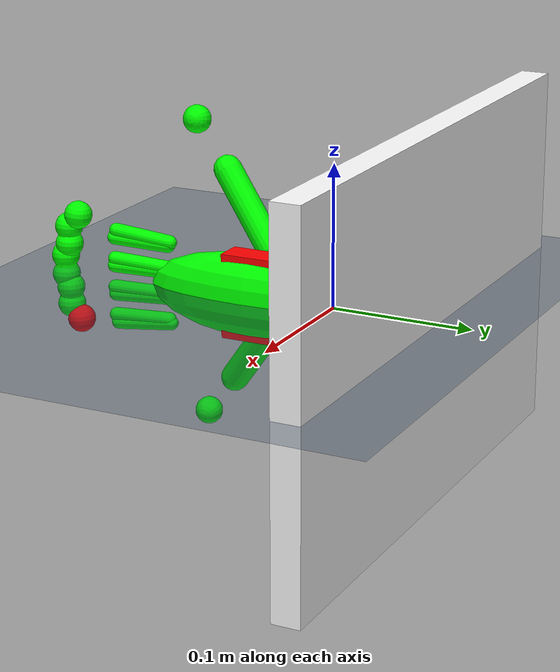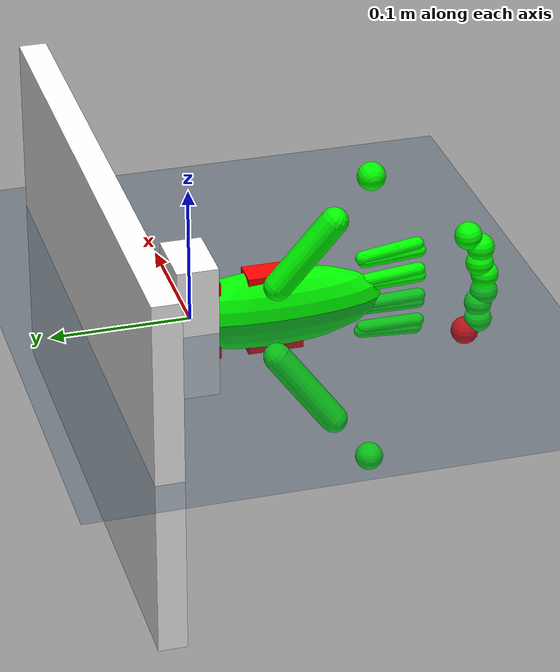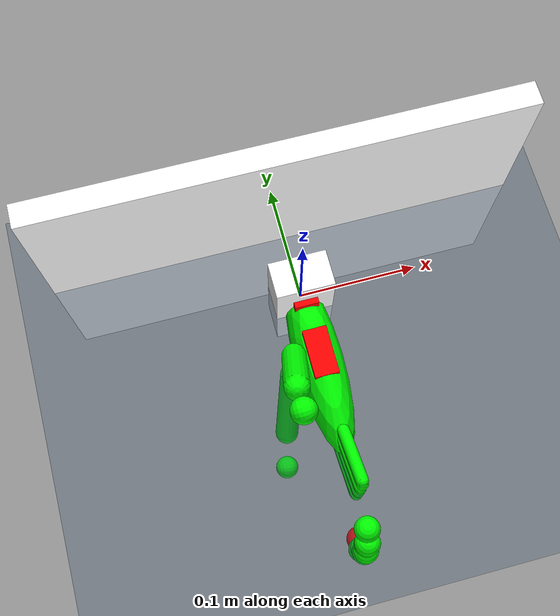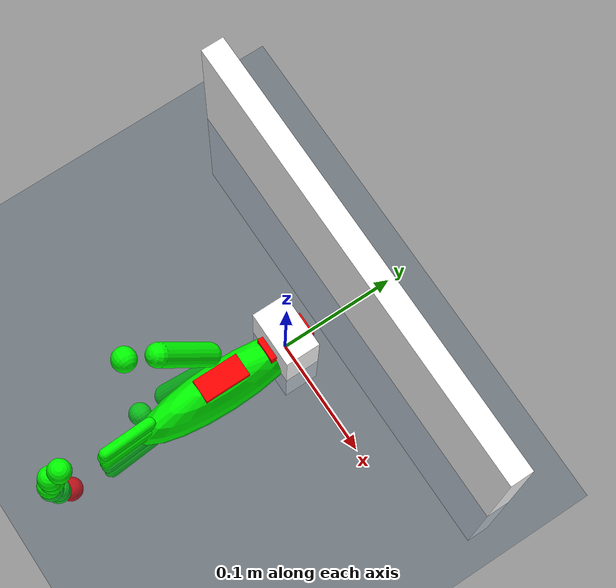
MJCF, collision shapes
<mujoco>
    <include file="inspire_hand_right.xml" />
    <include file="inspire_hand_left.xml" />

    <visual>
        <headlight diffuse="0.6 0.6 0.6" ambient="0.1 0.1 0.1" specular="0.9 0.9 0.9" />
        <rgba haze="0.15 0.25 0.35 1" />
        <global azimuth="140" elevation="-20" />
    </visual>

    <asset>
        <texture type="skybox" builtin="gradient" rgb1="0.3 0.5 0.7" rgb2="0 0 0" width="512"
            height="3072" />
        <texture type="2d" name="groundplane" builtin="checker" mark="edge" rgb1="0.2 0.3 0.4"
            rgb2="0.1 0.2 0.3"
            markrgb="0.8 0.8 0.8" width="300" height="300" />
        <material name="groundplane" texture="groundplane" texuniform="true" texrepeat="5 5"
            reflectance="0.2" />
    </asset>

    <worldbody>
        <!-- The floor is slightly elevated to accommodate the reference mocap data for the
        humanoid_mocap task -->
        <light pos="0 0 3.5" dir="0 0 -1" directional="false" />
        <geom name="floor" size="0 0 0.05" pos="0 0 0.0" type="plane" material="groundplane"
        />
        <body name="object_right" pos="0 0 0.0">
            <freejoint />
            <site name="object_right" pos="0 0 0" type="box" size="0.01 0.02 0.03"
                rgba="1 0 0 1" />
            <geom name="object_right" type="box" density="100" size="0.024 0.015 0.05"
                rgba="1.0 1.0 1.0 1" pos="0 0 0" />
            <camera name="track" pos="0 -.6 .3" xyaxes="1 0 0 0 1 2" mode="track" />
        </body>
        <body name="object_left" pos="0.0 0.0 0.0">
            <freejoint />
            <site name="object_left" pos="0 0 0" type="box" size="0.01 0.02 0.03"
                rgba="0 1 0 1" />
            <geom name="object_left" type="box" density="100" size="0.2 0.01 0.13"
                rgba="1.0 1.0 1.0 1" pos="0 0.065 0" />
        </body>
    </worldbody>

    <!-- manually specify the contact pairs -->
    <contact>
        <pair name="right_thumb_collision_box" geom1="right_thumb_collision" geom2="object_right"
            solref="0.008 1"
            friction="1 1 0.1" condim="3" />
        <pair name="right_thumb_intermediate_collision_box"
            geom1="right_thumb_intermediate_collision"
            geom2="object_right" solref="0.008 1"
            friction="1 1" condim="3" />
        <pair name="right_index_collision_box" geom1="right_index_collision" geom2="object_right"
            solref="0.008 1"
            friction="1 1 0.1" condim="3" />
        <pair name="right_middle_collision_box" geom1="right_middle_collision" geom2="object_right"
            solref="0.008 1"
            friction="1 1" condim="3" />
        <pair name="right_ring_collision_box" geom1="right_ring_collision" geom2="object_right"
            solref="0.008 1"
            friction="1 1" condim="3" />
        <pair name="right_pinky_collision_box" geom1="right_pinky_collision" geom2="object_right"
            solref="0.008 1"
            friction="1 1" condim="3" />

        <pair name="left_thumb_collision_box" geom1="left_thumb_collision" geom2="object_left"
            solref="0.008 1"
            friction="1 1" condim="3" />
        <pair name="left_thumb_intermediate_collision_box" geom1="left_thumb_intermediate_collision"
            geom2="object_left" solref="0.008 1"
            friction="1 1" condim="3" />
        <pair name="left_index_collision_box" geom1="left_index_collision" geom2="object_left"
            solref="0.008 1"
            friction="1 1" condim="3" />
        <pair name="left_middle_collision_box" geom1="left_middle_collision" geom2="object_left"
            solref="0.008 1"
            friction="1 1" condim="3" />
        <pair name="left_ring_collision_box" geom1="left_ring_collision" geom2="object_left"
            solref="0.008 1"
            friction="1 1" condim="3" />
        <pair name="left_pinky_collision_box" geom1="left_pinky_collision" geom2="object_left"
            solref="0.008 1"
            friction="1 1" condim="3" />

        <!-- object ground contact -->
        <pair name="object_ground_contact_right" geom1="object_right" geom2="floor" solref="0.008 1"
            friction="1 1" condim="3" />
        <pair name="object_ground_contact_left" geom1="object_left" geom2="floor" solref="0.008 1"
            friction="1 1" condim="3" />

        <!-- object object contact -->
        <pair name="object_object_contact_right" geom1="object_right" geom2="object_left"
            solref="0.008 1"
            friction="0.01 0.01" condim="1" />

        <!-- extra: right hand, left object contact -->
        <pair name="right_hand_left_object_thumb_tip" geom1="right_thumb_collision"
            geom2="object_left"
            solref="0.008 1"
            friction="0.01 0.01" condim="1" />
        <pair name="right_hand_left_object_index_tip" geom1="right_index_collision"
            geom2="object_left"
            solref="0.008 1"
            friction="0.01 0.01" condim="1" />
    </contact>

</mujoco>

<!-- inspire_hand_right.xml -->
<mujoco model="h1">
  <compiler angle="radian" meshdir="./meshes/" autolimits="true" />

  <option timestep="0.02"
    iterations="10" ls_iterations="50">
    <flag eulerdamp="disable" />
  </option>

  <default>
    <!-- disable all contacts and use explicit collision pairs -->
    <geom condim="1" contype="0" conaffinity="0" />
    <!-- with this setting, the response time is around 1s -->
    <position kp="300" dampratio="1.0" inheritrange="1" />
    <joint damping="0.0" armature="1.0" frictionloss="0.0" />
    <default class="mimic_right">
      <site size="0.01" type="sphere" rgba="1 0 0 1" group="0" />
    </default>
  </default>

  <asset>
    <mesh name="R_hand_base_link" content_type="model/stl" file="R_hand_base_link.STL" />
    <mesh name="Link11_R" content_type="model/stl" file="Link11_R.STL" />
    <mesh name="Link12_R" content_type="model/stl" file="Link12_R.STL" />
    <mesh name="Link13_R" content_type="model/stl" file="Link13_R.STL" />
    <mesh name="Link14_R" content_type="model/stl" file="Link14_R.STL" />
    <mesh name="Link15_R" content_type="model/stl" file="Link15_R.STL" />
    <mesh name="Link16_R" content_type="model/stl" file="Link16_R.STL" />
    <mesh name="Link17_R" content_type="model/stl" file="Link17_R.STL" />
    <mesh name="Link18_R" content_type="model/stl" file="Link18_R.STL" />
    <mesh name="Link19_R" content_type="model/stl" file="Link19_R.STL" />
    <mesh name="Link20_R" content_type="model/stl" file="Link20_R.STL" />
    <mesh name="Link21_R" content_type="model/stl" file="Link21_R.STL" />
    <mesh name="Link22_R" content_type="model/stl" file="Link22_R.STL" />
  </asset>

  <worldbody>
    <body name="right_hand_base" pos="0 0 0">
      <site name="right_palm" pos="0 -0.06 0" class="mimic_right" type="box" size="0.01 0.02 0.03" />
      <joint name="right_pos_x" type="slide" pos="0 0 0" axis="1 0 0" range="-1.0 1.0" />
      <joint name="right_pos_y" type="slide" pos="0 0 0" axis="0 1 0" range="-1.0 1.0" />
      <joint name="right_pos_z" type="slide" pos="0 0 0" axis="0 0 1" range="-1.0 1.0" />
      <!-- create rotation x, y, z joints -->
      <joint name="right_rot_x" type="hinge" pos="0 0 0" axis="1 0 0" range="-6.28 6.28" />
      <joint name="right_rot_y" type="hinge" pos="0 0 0" axis="0 1 0" range="-6.28 6.28" />
      <joint name="right_rot_z" type="hinge" pos="0 0 0" axis="0 0 1" range="-6.28 6.28" />
      <!-- add palm collision, use ellipsoid since mujoco mjx doesn't support box-cylinder
      collision -->
      <geom type="ellipsoid" name="right_palm_collision" size="0.02 0.08 0.03" pos="0 -0.06 0"
        contype="0" conaffinity="0" group="3" density="0" rgba="0 1 0 1" />
      <geom type="mesh" contype="0" conaffinity="0" group="1" density="0" rgba="0.1 0.1 0.1 1"
        mesh="R_hand_base_link" />
      <geom type="mesh" rgba="0.1 0.1 0.1 1" mesh="R_hand_base_link" />
      <body name="right_thumb_proximal_base" pos="-0.01696 -0.0691 -0.02045"
        quat="0.499998 0.5 -0.5 0.500002">
        <inertial pos="-0.0048064 0.0009382 -0.00757" quat="0.515015 0.680854 0.408023 0.323596"
          mass="0.0018869" diaginertia="8.66026e-08 6.8732e-08 4.94194e-08" />
        <joint name="right_thumb_proximal_yaw_joint" pos="0 0 0" axis="0 0 -1" range="-0.1 1.3"
          actuatorfrcrange="-1 1" />
        <geom type="mesh" contype="0" conaffinity="0" group="1" density="0" rgba="0.1 0.1 0.1 1"
          mesh="Link11_R" />
        <geom type="mesh" rgba="0.1 0.1 0.1 1" mesh="Link11_R" />
        <body name="right_thumb_proximal" pos="-0.0088099 0.010892 -0.00925"
          quat="0.0996843 0.0996847 0.700046 0.700044">
          <inertial pos="0.021932 0.012785 -0.0080386" quat="-0.254474 0.660716 0.251893 0.659733"
            mass="0.0066075" diaginertia="2.78601e-06 2.43933e-06 8.64566e-07" />
          <joint name="right_thumb_proximal_pitch_joint" pos="0 0 0" axis="0 0 1" range="0 0.5"
            actuatorfrcrange="-1 1" />
          <geom type="mesh" contype="0" conaffinity="0" group="1" density="0" rgba="0.1 0.1 0.1 1"
            mesh="Link12_R" />
          <geom type="mesh" rgba="0.1 0.1 0.1 1" mesh="Link12_R" />
          <geom name="right_thumb_intermediate_collision" type="capsule"
            fromto="-0.003140 -0.002501 -0.005 0.047924 0.035228 -0.005"
            size="0.01" contype="0" conaffinity="0" group="3" density="0"
            rgba="0 1 0 1" />
          <body name="right_thumb_intermediate" pos="0.04407 0.034553 -0.0008">
            <inertial pos="0.0095544 -0.0016282 -0.0071997"
              quat="0.636718 0.307389 -0.636802 0.307548" mass="0.0037847"
              diaginertia="4.6531e-07 4.48089e-07 2.45661e-07" />
            <joint name="right_thumb_intermediate_joint" pos="0 0 0" axis="0 0 1" range="0 0.8"
              actuatorfrcrange="-1 1" />
            <geom type="mesh" contype="0" conaffinity="0" group="1" density="0" rgba="0.1 0.1 0.1 1"
              mesh="Link13_R" />
            <geom type="mesh" rgba="0.1 0.1 0.1 1" mesh="Link13_R" />
            <body name="right_thumb_distal" pos="0.020248 0.010156 -0.0012">
              <inertial pos="0.0092888 0.0049529 -0.0060033"
                quat="-0.266294 0.655967 0.262806 0.655537" mass="0.0033441"
                diaginertia="2.0026e-07 1.95247e-07 8.1593e-08" />
              <joint name="right_thumb_distal_joint" pos="0 0 0" axis="0 0 1" range="0 1.2"
                actuatorfrcrange="-1 1" />
              <geom type="mesh" contype="0" conaffinity="0" group="1" density="0"
                rgba="0.1 0.1 0.1 1"
                mesh="Link14_R" />
              <geom type="mesh" rgba="0.1 0.1 0.1 1" mesh="Link14_R" />
              <geom name="right_thumb_collision" size="0.01" pos="0.0159104 0.0156076 -0.00599021"
                contype="0" conaffinity="0"
                group="3" density="0" rgba="0 1 0 1" />
              <site name="right_thumb_tip" pos="0.0159104 0.0156076 -0.00599021" class="mimic_right" />
            </body>
          </body>
        </body>
      </body>
      <body name="right_index_proximal" pos="0.00028533 -0.13653 -0.032268"
        quat="0.0174454 -0.999848 0 0">
        <inertial pos="0.0012259 0.011942 -0.0060001" quat="0.50867 0.49121 -0.508643 0.491172"
          mass="0.0042403" diaginertia="6.9398e-07 6.62871e-07 2.10909e-07" />
        <joint name="right_index_proximal_joint" pos="0 0 0" axis="0 0 1" range="0 1.7"
          actuatorfrcrange="-1 1" />
        <geom type="mesh" contype="0" conaffinity="0" group="1" density="0" rgba="0.1 0.1 0.1 1"
          mesh="Link15_R" />
        <geom type="mesh" rgba="0.1 0.1 0.1 1" mesh="Link15_R" />
        <geom name="right_index_intermediate_collision" type="capsule"
          fromto="-0.000437 -0.009413 -0.005 0.002139 0.032175 -0.005"
          size="0.005" contype="0" conaffinity="0" group="3" density="0"
          rgba="0 1 0 1" />
        <body name="right_index_intermediate" pos="-0.0026138 0.032026 -0.001">
          <inertial pos="0.0019697 0.019589 -0.005" quat="0.466773 0.531152 -0.466773 0.531153"
            mass="0.0045683" diaginertia="7.8179e-07 7.72465e-07 8.47212e-08" />
          <joint name="right_index_intermediate_joint" pos="0 0 0" axis="0 0 1" range="0 1.7"
            actuatorfrcrange="-1 1" />
          <geom type="mesh" contype="0" conaffinity="0" group="1" density="0" rgba="0.1 0.1 0.1 1"
            mesh="Link16_R" />
          <geom type="mesh" rgba="0.1 0.1 0.1 1" mesh="Link16_R" />
          <geom name="right_index_collision" size="0.01" pos="-0.00412053 0.0433132 -0.00501047"
            contype="0" conaffinity="0"
            group="3" density="0" rgba="0 1 0 1" />
          <site name="right_index_tip" pos="-0.00412053 0.0433132 -0.00501047" class="mimic_right" />
        </body>
      </body>
      <body name="right_middle_proximal" pos="0.00028533 -0.1371 -0.01295"
        quat="-3.67321e-06 -1 0 0">
        <inertial pos="0.001297 0.011934 -0.0060001" quat="0.510131 0.489693 -0.510105 0.489653"
          mass="0.0042403" diaginertia="6.9397e-07 6.62865e-07 2.10915e-07" />
        <joint name="right_middle_proximal_joint" pos="0 0 0" axis="0 0 1" range="0 1.7"
          actuatorfrcrange="-1 1" />
        <geom type="mesh" contype="0" conaffinity="0" group="1" density="0" rgba="0.1 0.1 0.1 1"
          mesh="Link17_R" />
        <geom type="mesh" rgba="0.1 0.1 0.1 1" mesh="Link17_R" />
        <geom name="right_middle_intermediate_collision" type="capsule"
          fromto="-0.000437 -0.009413 -0.005 0.002139 0.032175 -0.005"
          size="0.005" contype="0" conaffinity="0" group="3" density="0"
          rgba="0 1 0 1" />
        <body name="right_middle_intermediate" pos="-0.0024229 0.032041 -0.001">
          <inertial pos="0.001921 0.020796 -0.005" quat="0.466148 0.531627 -0.466229 0.531705"
            mass="0.0050396" diaginertia="9.8384e-07 9.73279e-07 9.14014e-08" />
          <joint name="right_middle_intermediate_joint" pos="0 0 0" axis="0 0 1" range="0 1.7"
            actuatorfrcrange="-1 1" />
          <geom type="mesh" contype="0" conaffinity="0" group="1" density="0" rgba="0.1 0.1 0.1 1"
            mesh="Link18_R" />
          <geom type="mesh" rgba="0.1 0.1 0.1 1" mesh="Link18_R" />
          <geom name="right_middle_collision" size="0.01" pos="-0.00426879 0.0466043 -0.00498678"
            contype="0" conaffinity="0"
            group="3" density="0" rgba="0 1 0 1" />
          <site name="right_middle_tip" pos="-0.00426879 0.0466043 -0.00498678" class="mimic_right" />
        </body>
      </body>
      <body name="right_ring_proximal" pos="0.00028533 -0.13691 0.0062872"
        quat="0.0261933 0.999657 0 0">
        <inertial pos="0.001297 0.011934 -0.0060002" quat="0.510129 0.489691 -0.510107 0.489654"
          mass="0.0042403" diaginertia="6.9397e-07 6.62865e-07 2.10915e-07" />
        <joint name="right_ring_proximal_joint" pos="0 0 0" axis="0 0 1" range="0 1.7"
          actuatorfrcrange="-1 1" />
        <geom type="mesh" contype="0" conaffinity="0" group="1" density="0" rgba="0.1 0.1 0.1 1"
          mesh="Link19_R" />
        <geom type="mesh" rgba="0.1 0.1 0.1 1" mesh="Link19_R" />
        <geom name="right_ring_intermediate_collision" type="capsule"
          fromto="-0.000437 -0.009413 -0.005 0.002139 0.032175 -0.005"
          size="0.005" contype="0" conaffinity="0" group="3" density="0"
          rgba="0 1 0 1" />
        <body name="right_ring_intermediate" pos="-0.0024229 0.032041 -0.001">
          <inertial pos="0.0021753 0.019567 -0.005" quat="0.469554 0.528695 -0.469554 0.528695"
            mass="0.0045683" diaginertia="7.8177e-07 7.72448e-07 8.4722e-08" />
          <joint name="right_ring_intermediate_joint" pos="0 0 0" axis="0 0 1" range="0 1.7"
            actuatorfrcrange="-1 1" />
          <geom type="mesh" contype="0" conaffinity="0" group="1" density="0" rgba="0.1 0.1 0.1 1"
            mesh="Link20_R" />
          <geom type="mesh" rgba="0.1 0.1 0.1 1" mesh="Link20_R" />
          <geom name="right_ring_collision" size="0.01" pos="-0.00366554 0.0433541 -0.00501047"
            contype="0" conaffinity="0"
            group="3" density="0" rgba="0 1 0 1" />
          <site name="right_ring_tip" pos="-0.00366554 0.0433541 -0.00501047" class="mimic_right" />
        </body>
      </body>
      <body name="right_pinky_proximal" pos="0.00028533 -0.13571 0.025488"
        quat="0.0523224 0.99863 0 0">
        <inertial pos="0.001297 0.011934 -0.0060001" quat="0.51013 0.489693 -0.510106 0.489653"
          mass="0.0042403" diaginertia="6.9397e-07 6.62865e-07 2.10915e-07" />
        <joint name="right_pinky_proximal_joint" pos="0 0 0" axis="0 0 1" range="0 1.7"
          actuatorfrcrange="-1 1" />
        <geom type="mesh" contype="0" conaffinity="0" group="1" density="0" rgba="0.1 0.1 0.1 1"
          mesh="Link21_R" />
        <geom type="mesh" rgba="0.1 0.1 0.1 1" mesh="Link21_R" />
        <geom name="right_pinky_intermediate_collision" type="capsule"
          fromto="-0.000437 -0.009413 -0.005 0.002139 0.032175 -0.005"
          size="0.005" contype="0" conaffinity="0" group="3" density="0"
          rgba="0 1 0 1" />
        <body name="right_pinky_intermediate" pos="-0.0024229 0.032041 -0.001">
          <inertial pos="0.0024748 0.016203 -0.0050031" quat="0.47398 0.528862 -0.469291 0.524799"
            mass="0.0035996" diaginertia="4.4867e-07 4.43723e-07 6.56538e-08" />
          <joint name="right_pinky_intermediate_joint" pos="0 0 0" axis="0 0 1" range="0 1.7"
            actuatorfrcrange="-1 1" />
          <geom type="mesh" contype="0" conaffinity="0" group="1" density="0" rgba="0.1 0.1 0.1 1"
            mesh="Link22_R" />
          <geom type="mesh" rgba="0.1 0.1 0.1 1" mesh="Link22_R" />
          <geom name="right_pinky_collision" size="0.01" pos="-0.00260734 0.0362776 -0.00501047"
            contype="0" conaffinity="0"
            group="3" density="0" rgba="0 1 0 1" />
          <site name="right_pinky_tip" pos="-0.00260734 0.0362776 -0.00501047" class="mimic_right" />
        </body>
      </body>
    </body>
  </worldbody>

  <actuator>
    <!-- Global position and rotation joints -->
    <position name="right_pos_x_position" joint="right_pos_x" />
    <position name="right_pos_y_position" joint="right_pos_y" />
    <position name="right_pos_z_position" joint="right_pos_z" />
    <position name="right_rot_x_position" joint="right_rot_x" />
    <position name="right_rot_y_position" joint="right_rot_y" />
    <position name="right_rot_z_position" joint="right_rot_z" />

    <!-- Thumb joints -->
    <position name="right_thumb_proximal_yaw_position" joint="right_thumb_proximal_yaw_joint" />
    <position name="right_thumb_proximal_pitch_position" joint="right_thumb_proximal_pitch_joint" />
    <position name="right_thumb_intermediate_position" joint="right_thumb_intermediate_joint" />
    <position name="right_thumb_distal_position" joint="right_thumb_distal_joint" />

    <!-- Index joints -->
    <position name="right_index_proximal_position" joint="right_index_proximal_joint" />
    <position name="right_index_intermediate_position" joint="right_index_intermediate_joint" />

    <!-- Middle joints -->
    <position name="right_middle_proximal_position" joint="right_middle_proximal_joint" />
    <position name="right_middle_intermediate_position" joint="right_middle_intermediate_joint" />

    <!-- Ring joints -->
    <position name="right_ring_proximal_position" joint="right_ring_proximal_joint" />
    <position name="right_ring_intermediate_position" joint="right_ring_intermediate_joint" />

    <!-- Pinky joints -->
    <position name="right_pinky_proximal_position" joint="right_pinky_proximal_joint" />
    <position name="right_pinky_intermediate_position" joint="right_pinky_intermediate_joint" />

  </actuator>
</mujoco>

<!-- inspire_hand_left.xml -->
<mujoco model="h1">
    <compiler angle="radian" meshdir="./meshes/" />

    <option timestep="0.02" iterations="10" ls_iterations="50">
        <flag eulerdamp="disable" />
    </option>

    <default>
        <!-- disable all contacts and use explicit collision pairs -->
        <geom condim="1" contype="0" conaffinity="0" />
        <!-- with this setting, the response time is around 1s -->
        <position kp="300" dampratio="1.0" inheritrange="1" />
        <joint damping="0.0" armature="1.0" frictionloss="0.0" />
        <default class="mimic_left">
            <site size="0.01" type="sphere" rgba="1 0 0 1" group="0" />
        </default>
    </default>

    <asset>
        <mesh name="L_hand_base_link" content_type="model/stl" file="L_hand_base_link.STL" />
        <mesh name="Link11_L" content_type="model/stl" file="Link11_L.STL" />
        <mesh name="Link12_L" content_type="model/stl" file="Link12_L.STL" />
        <mesh name="Link13_L" content_type="model/stl" file="Link13_L.STL" />
        <mesh name="Link14_L" content_type="model/stl" file="Link14_L.STL" />
        <mesh name="Link15_L" content_type="model/stl" file="Link15_L.STL" />
        <mesh name="Link16_L" content_type="model/stl" file="Link16_L.STL" />
        <mesh name="Link17_L" content_type="model/stl" file="Link17_L.STL" />
        <mesh name="Link18_L" content_type="model/stl" file="Link18_L.STL" />
        <mesh name="Link19_L" content_type="model/stl" file="Link19_L.STL" />
        <mesh name="Link20_L" content_type="model/stl" file="Link20_L.STL" />
        <mesh name="Link21_L" content_type="model/stl" file="Link21_L.STL" />
        <mesh name="Link22_L" content_type="model/stl" file="Link22_L.STL" />
    </asset>

    <worldbody>
        <body name="left_hand_base" pos="0 0 0.0">
            <site name="left_palm" pos="0 -0.06 0" class="mimic_left" type="box"
                size="0.01 0.02 0.03" />
            <joint name="left_pos_x" type="slide" pos="0 0 0" axis="1 0 0" range="-1.0 1.0" />
            <joint name="left_pos_y" type="slide" pos="0 0 0" axis="0 1 0" range="-1.0 1.0" />
            <joint name="left_pos_z" type="slide" pos="0 0 0" axis="0 0 1" range="-1.0 1.0" />
            <!-- create rotation x, y, z joints -->
            <joint name="left_rot_x" type="hinge" pos="0 0 0" axis="1 0 0" range="-6.28 6.28" />
            <joint name="left_rot_y" type="hinge" pos="0 0 0" axis="0 1 0" range="-6.28 6.28" />
            <joint name="left_rot_z" type="hinge" pos="0 0 0" axis="0 0 1" range="-6.28 6.28" />
            <!-- add palm collision, use ellipsoid since mujoco mjx doesn't support box-cylinder
            collision -->
            <geom type="ellipsoid" name="left_palm_collision" size="0.02 0.08 0.03" pos="0 -0.06 0"
                contype="0" conaffinity="0" group="3" density="0" rgba="0 1 0 1" />
            <geom type="mesh" contype="0" conaffinity="0" group="1" density="0" rgba="0.1 0.1 0.1 1"
                mesh="L_hand_base_link" />
            <geom type="mesh" rgba="0.1 0.1 0.1 1" mesh="L_hand_base_link" />
            <body name="left_thumb_proximal_base" pos="-0.01696 -0.0691 0.02045"
                quat="0.499998 0.5 -0.5 0.500002">
                <inertial pos="0.0048817 0.00038782 -0.00722"
                    quat="0.445981 0.352284 0.495833 0.656617"
                    mass="0.0018869" diaginertia="8.66031e-08 6.87331e-08 4.94199e-08" />
                <joint name="left_thumb_proximal_yaw_joint" pos="0 0 0" axis="0 0 1"
                    range="-0.1 1.3" />
                <geom type="mesh" contype="0" conaffinity="0" group="1" density="0"
                    rgba="0.1 0.1 0.1 1"
                    mesh="Link11_L" />
                <geom type="mesh" rgba="0.1 0.1 0.1 1" mesh="Link11_L" />
                <body name="left_thumb_proximal" pos="0.0099867 0.0098242 -0.0089"
                    quat="0.704571 -0.704573 -0.0598169 0.0598167">
                    <inertial pos="0.021936 -0.01279 -0.0080386"
                        quat="0.25452 0.660687 -0.251949 0.659723"
                        mass="0.0066101" diaginertia="2.78701e-06 2.44024e-06 8.6466e-07" />
                    <joint name="left_thumb_proximal_pitch_joint" pos="0 0 0" axis="0 0 -1"
                        range="0 0.5" />
                    <geom type="mesh" contype="0" conaffinity="0" group="1" density="0"
                        rgba="0.1 0.1 0.1 1"
                        mesh="Link12_L" />
                    <geom type="mesh" rgba="0.1 0.1 0.1 1" mesh="Link12_L" />
                    <geom name="left_thumb_intermediate_collision" type="capsule"
                        fromto="-0.003140 0.002501 -0.005 0.047924 -0.035228 -0.005"
                        size="0.01" contype="0" conaffinity="0" group="3" density="0"
                        rgba="0 1 0 1" />
                    <body name="left_thumb_intermediate" pos="0.04407 -0.034553 -0.0008">
                        <inertial pos="0.0095531 0.0016282 -0.0072002"
                            quat="0.30738 0.636732 -0.307526 0.636803" mass="0.0037844"
                            diaginertia="4.6532e-07 4.48114e-07 2.45646e-07" />
                        <joint name="left_thumb_intermediate_joint" pos="0 0 0" axis="0 0 -1"
                            range="0 0.8" />
                        <geom type="mesh" contype="0" conaffinity="0" group="1" density="0"
                            rgba="0.1 0.1 0.1 1"
                            mesh="Link13_L" />
                        <geom type="mesh" rgba="0.1 0.1 0.1 1" mesh="Link13_L" />
                        <body name="left_thumb_distal" pos="0.020248 -0.010156 -0.0012">
                            <inertial pos="0.0092888 -0.004953 -0.0060033"
                                quat="0.266264 0.65596 -0.262836 0.655544" mass="0.003344"
                                diaginertia="2.0026e-07 1.95246e-07 8.1594e-08" />
                            <joint name="left_thumb_distal_joint" pos="0 0 0" axis="0 0 -1"
                                range="0 1.2" />
                            <geom type="mesh" contype="0" conaffinity="0" group="1" density="0"
                                rgba="0.1 0.1 0.1 1"
                                mesh="Link14_L" />
                            <geom type="mesh" rgba="0.1 0.1 0.1 1" mesh="Link14_L" />
                            <geom name="left_thumb_collision" size="0.01"
                                pos="0.0159104 -0.0156076 -0.00599021"
                                contype="0" conaffinity="0"
                                group="3" density="0" rgba="0 1 0 1" />
                            <site name="left_thumb_tip" pos="0.0159104 -0.0156076 -0.00599021"
                                class="mimic_left" />
                        </body>
                    </body>
                </body>
            </body>
            <body name="left_index_proximal" pos="0.00028533 -0.13653 0.032268"
                quat="0.999848 -0.0174526 0 0">
                <inertial pos="0.0012971 -0.011934 -0.0059998"
                    quat="0.489677 0.510115 -0.489692 0.510099"
                    mass="0.0042405" diaginertia="6.9402e-07 6.62904e-07 2.10916e-07" />
                <joint name="left_index_proximal_joint" pos="0 0 0" axis="0 0 -1" range="0 1.7" />
                <geom type="mesh" contype="0" conaffinity="0" group="1" density="0"
                    rgba="0.1 0.1 0.1 1"
                    mesh="Link15_L" />
                <geom type="mesh" rgba="0.1 0.1 0.1 1" mesh="Link15_L" />
                <geom name="left_index_intermediate_collision" type="capsule"
                    fromto="-0.000437 0.009413 -0.005 0.002139 -0.032175 -0.005"
                    size="0.005" contype="0" conaffinity="0" group="3" density="0"
                    rgba="0 1 0 1" />
                <body name="left_index_intermediate" pos="-0.0024229 -0.032041 -0.001">
                    <inertial pos="0.0021753 -0.019567 -0.005"
                        quat="0.528694 0.469555 -0.528694 0.469555"
                        mass="0.0045682" diaginertia="7.8176e-07 7.72427e-07 8.47209e-08" />
                    <joint name="left_index_intermediate_joint" pos="0 0 0" axis="0 0 -1"
                        range="0 1.7" />
                    <geom type="mesh" contype="0" conaffinity="0" group="1" density="0"
                        rgba="0.1 0.1 0.1 1"
                        mesh="Link16_L" />
                    <geom type="mesh" rgba="0.1 0.1 0.1 1" mesh="Link16_L" />
                    <geom name="left_index_collision" size="0.01"
                        pos="-0.00412053 -0.0433132 -0.00501047"
                        contype="0" conaffinity="0"
                        group="3" density="0" rgba="0 1 0 1" />
                    <site name="left_index_tip" pos="-0.00412053 -0.0433132 -0.00501047"
                        class="mimic_left" />
                </body>
            </body>
            <body name="left_middle_proximal" pos="0.00028533 -0.1371 0.01295">
                <inertial pos="0.0012971 -0.011934 -0.0059999"
                    quat="0.489677 0.510115 -0.489692 0.510099"
                    mass="0.0042405" diaginertia="6.9402e-07 6.62904e-07 2.10916e-07" />
                <joint name="left_middle_proximal_joint" pos="0 0 0" axis="0 0 -1" range="0 1.7" />
                <geom type="mesh" contype="0" conaffinity="0" group="1" density="0"
                    rgba="0.1 0.1 0.1 1"
                    mesh="Link17_L" />
                <geom type="mesh" rgba="0.1 0.1 0.1 1" mesh="Link17_L" />
                <geom name="left_middle_intermediate_collision" type="capsule"
                    fromto="-0.000437 0.009413 -0.005 0.002139 -0.032175 -0.005"
                    size="0.005" contype="0" conaffinity="0" group="3" density="0"
                    rgba="0 1 0 1" />
                <body name="left_middle_intermediate" pos="-0.0024229 -0.032041 -0.001">
                    <inertial pos="0.001921 -0.020796 -0.0049999"
                        quat="0.531603 0.466115 -0.531728 0.466262"
                        mass="0.0050397" diaginertia="9.8385e-07 9.73288e-07 9.14016e-08" />
                    <joint name="left_middle_intermediate_joint" pos="0 0 0" axis="0 0 -1"
                        range="0 1.7" />
                    <geom type="mesh" contype="0" conaffinity="0" group="1" density="0"
                        rgba="0.1 0.1 0.1 1"
                        mesh="Link18_L" />
                    <geom type="mesh" rgba="0.1 0.1 0.1 1" mesh="Link18_L" />
                    <geom name="left_middle_collision" size="0.01"
                        pos="-0.00426879 -0.0466043 -0.00498678"
                        contype="0" conaffinity="0"
                        group="3" density="0" rgba="0 1 0 1" />
                    <site name="left_middle_tip" pos="-0.00426879 -0.0466043 -0.00498678"
                        class="mimic_left" />
                </body>
            </body>
            <body name="left_ring_proximal" pos="0.00028533 -0.13691 -0.0062872"
                quat="0.999657 0.026177 0 0">
                <inertial pos="0.0012971 -0.011934 -0.0059999"
                    quat="0.489677 0.510114 -0.489692 0.510099"
                    mass="0.0042405" diaginertia="6.9402e-07 6.62904e-07 2.10916e-07" />
                <joint name="left_ring_proximal_joint" pos="0 0 0" axis="0 0 -1" range="0 1.7" />
                <geom type="mesh" contype="0" conaffinity="0" group="1" density="0"
                    rgba="0.1 0.1 0.1 1"
                    mesh="Link19_L" />
                <geom type="mesh" rgba="0.1 0.1 0.1 1" mesh="Link19_L" />
                <geom name="left_ring_intermediate_collision" type="capsule"
                    fromto="-0.000437 0.009413 -0.005 0.002139 -0.032175 -0.005"
                    size="0.005" contype="0" conaffinity="0" group="3" density="0"
                    rgba="0 1 0 1" />
                <body name="left_ring_intermediate" pos="-0.0024229 -0.032041 -0.001">
                    <inertial pos="0.0021753 -0.019567 -0.005"
                        quat="0.528694 0.469556 -0.528694 0.469556"
                        mass="0.0045682" diaginertia="7.8176e-07 7.72437e-07 8.47208e-08" />
                    <joint name="left_ring_intermediate_joint" pos="0 0 0" axis="0 0 -1"
                        range="0 1.7" />
                    <geom type="mesh" contype="0" conaffinity="0" group="1" density="0"
                        rgba="0.1 0.1 0.1 1"
                        mesh="Link20_L" />
                    <geom type="mesh" rgba="0.1 0.1 0.1 1" mesh="Link20_L" />
                    <geom name="left_ring_collision" size="0.01"
                        pos="-0.00366554 -0.0433541 -0.00501047"
                        contype="0" conaffinity="0"
                        group="3" density="0" rgba="0 1 0 1" />
                    <site name="left_ring_tip" pos="-0.00366554 -0.0433541 -0.00501047"
                        class="mimic_left" />
                </body>
            </body>
            <body name="left_pinky_proximal" pos="0.00028533 -0.13571 -0.025488"
                quat="0.99863 0.0523361 0 0">
                <inertial pos="0.0012971 -0.011934 -0.0059999"
                    quat="0.489677 0.510114 -0.489692 0.510099"
                    mass="0.0042405" diaginertia="6.9402e-07 6.62904e-07 2.10916e-07" />
                <joint name="left_pinky_proximal_joint" pos="0 0 0" axis="0 0 -1" range="0 1.7" />
                <geom type="mesh" contype="0" conaffinity="0" group="1" density="0"
                    rgba="0.1 0.1 0.1 1"
                    mesh="Link21_L" />
                <geom type="mesh" rgba="0.1 0.1 0.1 1" mesh="Link21_L" />
                <geom name="left_pinky_intermediate_collision" type="capsule"
                    fromto="-0.000437 0.009413 -0.005 0.002139 -0.032175 -0.005"
                    size="0.005" contype="0" conaffinity="0" group="3" density="0"
                    rgba="0 1 0 1" />
                <body name="left_pinky_intermediate" pos="-0.0024229 -0.032041 -0.001">
                    <inertial pos="0.0024788 -0.016208 -0.0050001"
                        quat="0.526797 0.471683 -0.526793 0.471687"
                        mass="0.0036036" diaginertia="4.4881e-07 4.43809e-07 6.5736e-08" />
                    <joint name="left_pinky_intermediate_joint" pos="0 0 0" axis="0 0 -1"
                        range="0 1.7" />
                    <geom type="mesh" contype="0" conaffinity="0" group="1" density="0"
                        rgba="0.1 0.1 0.1 1"
                        mesh="Link22_L" />
                    <geom type="mesh" rgba="0.1 0.1 0.1 1" mesh="Link22_L" />
                    <geom name="left_pinky_collision" size="0.005"
                        pos="-0.00260734 -0.0362776 -0.00501047"
                        contype="0" conaffinity="0"
                        group="3" density="0" rgba="0 1 0 1" />
                    <site name="left_pinky_tip" pos="-0.00260734 -0.0362776 -0.00501047"
                        class="mimic_left" />
                </body>
            </body>
        </body>
    </worldbody>

    <actuator>
        <!-- Global position and rotation joints -->
        <position name="left_pos_x_position" joint="left_pos_x" />
        <position name="left_pos_y_position" joint="left_pos_y" />
        <position name="left_pos_z_position" joint="left_pos_z" />
        <position name="left_rot_x_position" joint="left_rot_x" />
        <position name="left_rot_y_position" joint="left_rot_y" />
        <position name="left_rot_z_position" joint="left_rot_z" />

        <!-- Thumb joints -->
        <position name="left_thumb_proximal_yaw_position" joint="left_thumb_proximal_yaw_joint" />
        <position name="left_thumb_proximal_pitch_position" joint="left_thumb_proximal_pitch_joint" />
        <position name="left_thumb_intermediate_position" joint="left_thumb_intermediate_joint" />
        <position name="left_thumb_distal_position" joint="left_thumb_distal_joint" />

        <!-- Index joints -->
        <position name="left_index_proximal_position" joint="left_index_proximal_joint" />
        <position name="left_index_intermediate_position" joint="left_index_intermediate_joint" />

        <!-- Middle joints -->
        <position name="left_middle_proximal_position" joint="left_middle_proximal_joint" />
        <position name="left_middle_intermediate_position" joint="left_middle_intermediate_joint" />

        <!-- Ring joints -->
        <position name="left_ring_proximal_position" joint="left_ring_proximal_joint" />
        <position name="left_ring_intermediate_position" joint="left_ring_intermediate_joint" />

        <!-- Pinky joints -->
        <position name="left_pinky_proximal_position" joint="left_pinky_proximal_joint" />
        <position name="left_pinky_intermediate_position" joint="left_pinky_intermediate_joint" />

    </actuator>
</mujoco>
